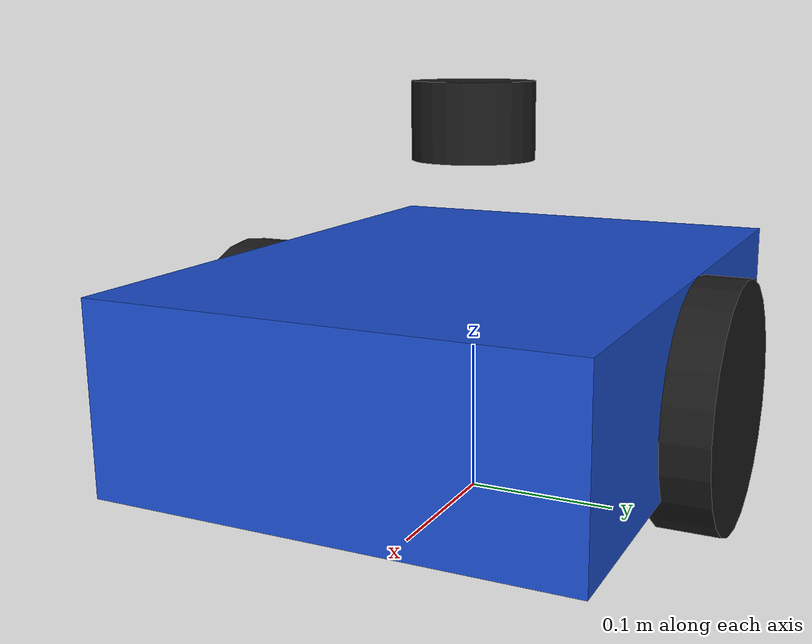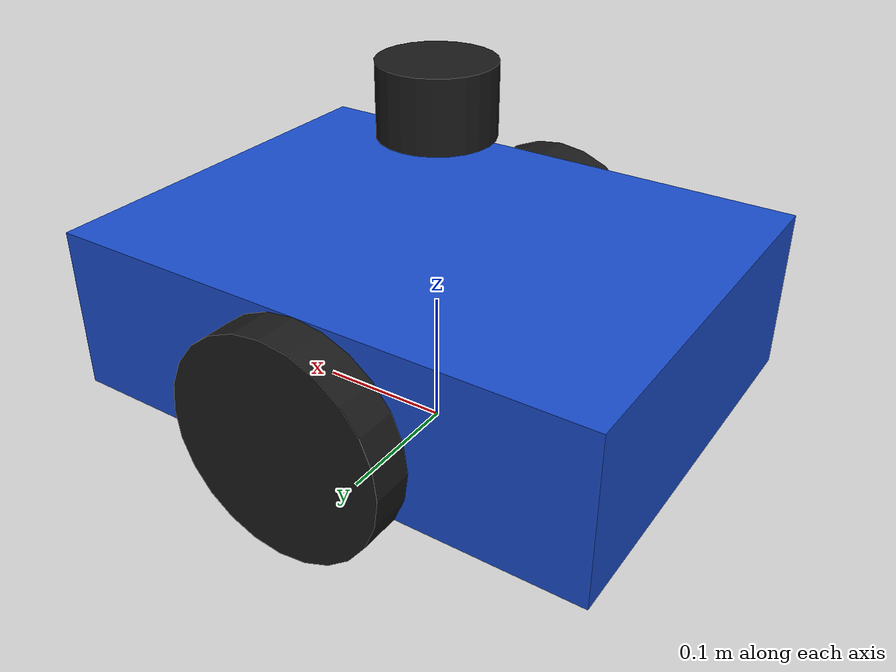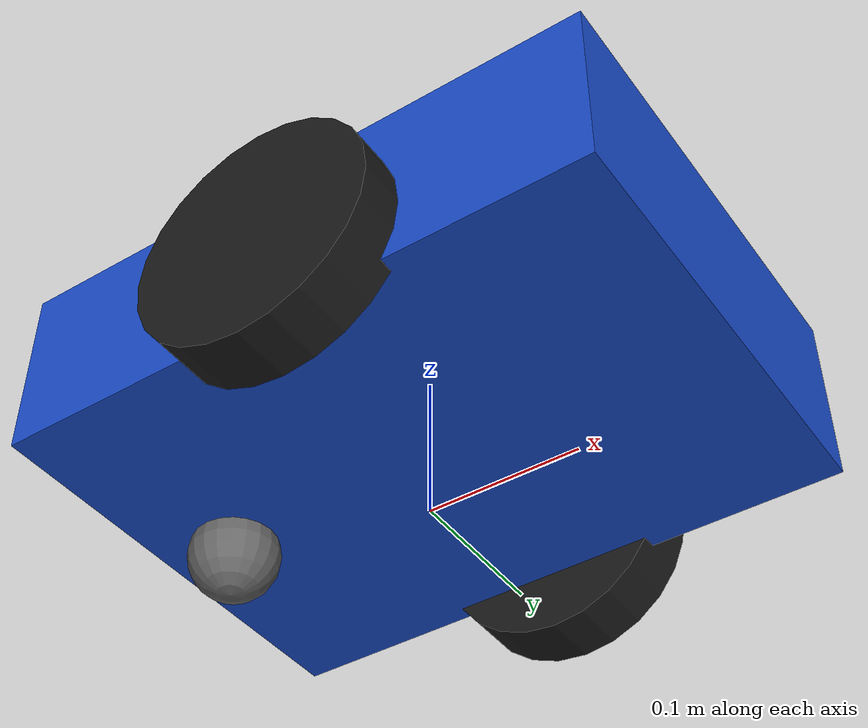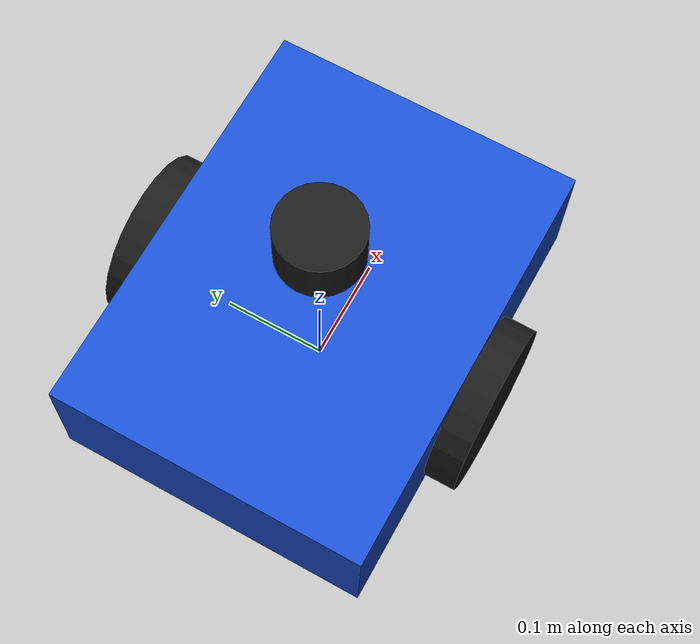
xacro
<?xml version="1.0"?>
<robot xmlns:xacro="http://www.ros.org/wiki/xacro" name="pnc_diff_drive">
  <xacro:property name="base_length" value="0.40"/>
  <xacro:property name="base_width" value="0.30"/>
  <xacro:property name="base_height" value="0.12"/>
  <xacro:property name="wheel_radius" value="0.08"/>
  <xacro:property name="wheel_width" value="0.04"/>
  <xacro:property name="wheel_y" value="0.16"/>
  <xacro:property name="wheel_separation" value="${2 * wheel_y}"/>

  <link name="base_link">
    <visual>
      <!-- 底盘底部抬高 0.04m 离地间隙：轮子着地承重，底盘悬空（否则底盘先着地轮子空转） -->
      <origin xyz="0 0 0.10" rpy="0 0 0"/>
      <geometry>
        <box size="${base_length} ${base_width} ${base_height}"/>
      </geometry>
      <material name="blue">
        <color rgba="0.1 0.3 0.8 1.0"/>
      </material>
    </visual>
    <collision>
      <origin xyz="0 0 0.10" rpy="0 0 0"/>
      <geometry>
        <box size="${base_length} ${base_width} ${base_height}"/>
      </geometry>
    </collision>
    <inertial>
      <origin xyz="0 0 ${base_height / 2}" rpy="0 0 0"/>
      <mass value="8.0"/>
      <inertia ixx="0.12" ixy="0.0" ixz="0.0" iyy="0.18" iyz="0.0" izz="0.22"/>
    </inertial>
  </link>

  <link name="left_wheel">
    <visual>
      <origin xyz="0 0 0" rpy="1.57079632679 0 0"/>
      <geometry>
        <cylinder radius="${wheel_radius}" length="${wheel_width}"/>
      </geometry>
      <material name="black">
        <color rgba="0.1 0.1 0.1 1.0"/>
      </material>
    </visual>
    <collision>
      <origin xyz="0 0 0" rpy="1.57079632679 0 0"/>
      <geometry>
        <cylinder radius="${wheel_radius}" length="${wheel_width}"/>
      </geometry>
    </collision>
    <inertial>
      <origin xyz="0 0 0" rpy="1.57079632679 0 0"/>
      <mass value="0.8"/>
      <inertia ixx="0.0015" ixy="0.0" ixz="0.0" iyy="0.0015" iyz="0.0" izz="0.0025"/>
    </inertial>
  </link>

  <link name="right_wheel">
    <visual>
      <origin xyz="0 0 0" rpy="1.57079632679 0 0"/>
      <geometry>
        <cylinder radius="${wheel_radius}" length="${wheel_width}"/>
      </geometry>
      <material name="black">
        <color rgba="0.1 0.1 0.1 1.0"/>
      </material>
    </visual>
    <collision>
      <origin xyz="0 0 0" rpy="1.57079632679 0 0"/>
      <geometry>
        <cylinder radius="${wheel_radius}" length="${wheel_width}"/>
      </geometry>
    </collision>
    <inertial>
      <origin xyz="0 0 0" rpy="1.57079632679 0 0"/>
      <mass value="0.8"/>
      <inertia ixx="0.0015" ixy="0.0" ixz="0.0" iyy="0.0015" iyz="0.0" izz="0.0025"/>
    </inertial>
  </link>

  <link name="caster">
    <visual>
      <origin xyz="0 0 0" rpy="0 0 0"/>
      <geometry>
        <sphere radius="0.03"/>
      </geometry>
      <material name="gray">
        <color rgba="0.4 0.4 0.4 1.0"/>
      </material>
    </visual>
    <collision>
      <origin xyz="0 0 0" rpy="0 0 0"/>
      <geometry>
        <sphere radius="0.03"/>
      </geometry>
    </collision>
    <inertial>
      <mass value="0.2"/>
      <inertia ixx="0.0001" ixy="0.0" ixz="0.0" iyy="0.0001" iyz="0.0" izz="0.0001"/>
    </inertial>
  </link>

  <joint name="left_wheel_joint" type="continuous">
    <parent link="base_link"/>
    <child link="left_wheel"/>
    <origin xyz="0 ${wheel_y} ${wheel_radius}" rpy="0 0 0"/>
    <axis xyz="0 1 0"/>
  </joint>

  <joint name="right_wheel_joint" type="continuous">
    <parent link="base_link"/>
    <child link="right_wheel"/>
    <origin xyz="0 ${-wheel_y} ${wheel_radius}" rpy="0 0 0"/>
    <axis xyz="0 1 0"/>
  </joint>

  <joint name="caster_joint" type="fixed">
    <parent link="base_link"/>
    <child link="caster"/>
    <origin xyz="${-base_length / 2 + 0.05} 0 0.03" rpy="0 0 0"/>
  </joint>

  <!-- LiDAR: gpu_lidar (Harmonic), mounted on top of base_link -->
  <link name="laser">
    <visual>
      <origin xyz="0 0 0" rpy="0 0 0"/>
      <geometry>
        <cylinder radius="0.04" length="0.05"/>
      </geometry>
      <material name="dark">
        <color rgba="0.1 0.1 0.1 1.0"/>
      </material>
    </visual>
    <collision>
      <origin xyz="0 0 0" rpy="0 0 0"/>
      <geometry>
        <cylinder radius="0.04" length="0.05"/>
      </geometry>
    </collision>
    <inertial>
      <mass value="0.1"/>
      <inertia ixx="0.0001" ixy="0.0" ixz="0.0" iyy="0.0001" iyz="0.0" izz="0.0001"/>
    </inertial>
  </link>

  <joint name="laser_joint" type="fixed">
    <parent link="base_link"/>
    <child link="laser"/>
    <origin xyz="0 0 0.25" rpy="0 0 0"/>
  </joint>

  <gazebo reference="base_link">
    <material>Gazebo/Blue</material>
  </gazebo>
  <gazebo reference="left_wheel">
    <material>Gazebo/Black</material>
    <collision>
      <surface>
        <friction>
          <ode>
            <mu>1.5</mu>
            <mu2>1.5</mu2>
          </ode>
        </friction>
        <contact>
          <ode>
            <kp>1e8</kp>
            <kd>1.0</kd>
          </ode>
        </contact>
      </surface>
    </collision>
  </gazebo>
  <gazebo reference="right_wheel">
    <material>Gazebo/Black</material>
    <collision>
      <surface>
        <friction>
          <ode>
            <mu>1.5</mu>
            <mu2>1.5</mu2>
          </ode>
        </friction>
        <contact>
          <ode>
            <kp>1e8</kp>
            <kd>1.0</kd>
          </ode>
        </contact>
      </surface>
    </collision>
  </gazebo>
  <gazebo reference="caster">
    <material>Gazebo/Grey</material>
    <mu1>0.1</mu1>
    <mu2>0.1</mu2>
  </gazebo>

  <gazebo>
    <plugin filename="gz-sim-diff-drive-system"
            name="gz::sim::systems::DiffDrive">
      <left_joint>left_wheel_joint</left_joint>
      <right_joint>right_wheel_joint</right_joint>
      <wheel_separation>${wheel_separation}</wheel_separation>
      <wheel_radius>${wheel_radius}</wheel_radius>
      <topic>cmd_vel</topic>
      <odom_topic>odom</odom_topic>
      <tf_topic>tf</tf_topic>
      <frame_id>odom</frame_id>
      <child_frame_id>base_link</child_frame_id>
      <odom_publish_frequency>50</odom_publish_frequency>
      <max_linear_velocity>1.0</max_linear_velocity>
      <min_linear_velocity>-1.0</min_linear_velocity>
      <max_angular_velocity>1.5</max_angular_velocity>
      <min_angular_velocity>-1.5</min_angular_velocity>
    </plugin>
  </gazebo>

  <!-- LiDAR sensor: gpu_lidar (same style as movexbot laser.xacro) -->
  <gazebo reference="laser">
    <sensor type="gpu_lidar" name="laser_sensor">
      <pose>0 0 0 0 0 0</pose>
      <visualize>false</visualize>
      <update_rate>100</update_rate>
      <topic>nav_scan</topic>
      <gz_frame_id>laser</gz_frame_id>
      <lidar>
        <scan>
          <horizontal>
            <samples>720</samples>
            <resolution>1</resolution>
            <min_angle>-2.09</min_angle>
            <max_angle>2.09</max_angle>
          </horizontal>
        </scan>
        <range>
          <min>0.10</min>
          <max>40.0</max>
          <resolution>0.01</resolution>
        </range>
        <noise>
          <type>gaussian</type>
          <mean>0.0</mean>
          <stddev>0.01</stddev>
        </noise>
      </lidar>
    </sensor>
  </gazebo>
</robot>
